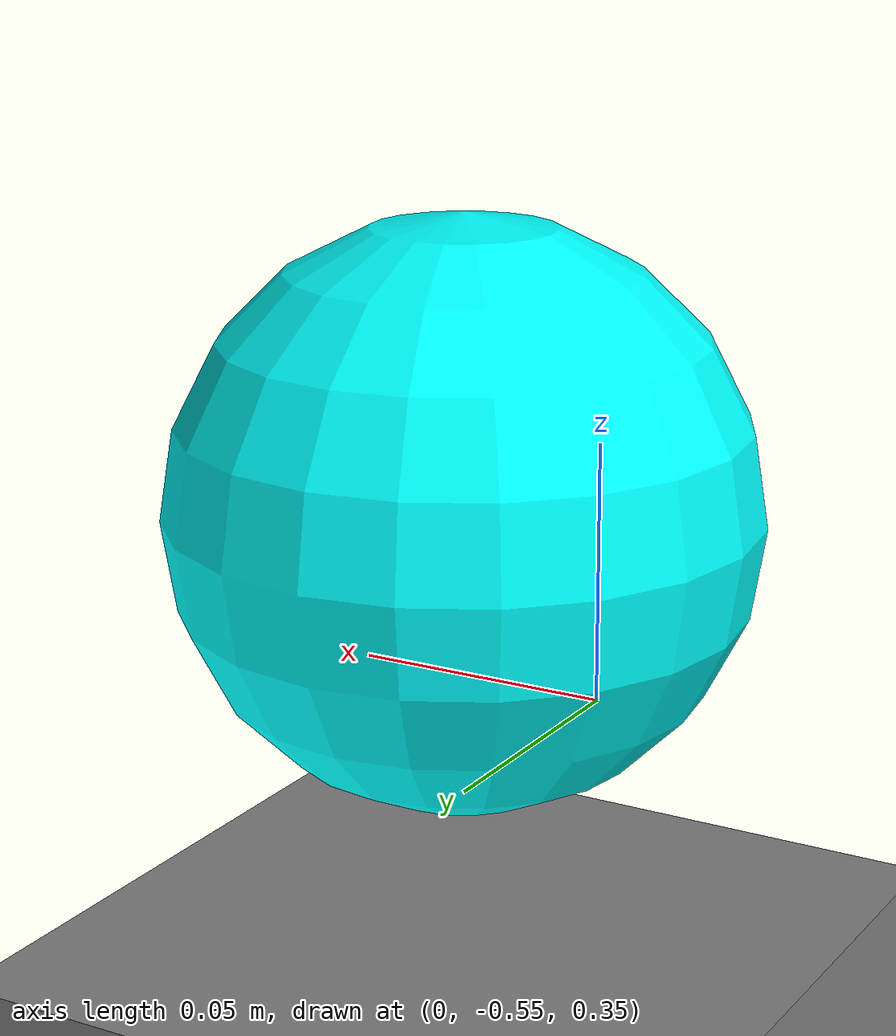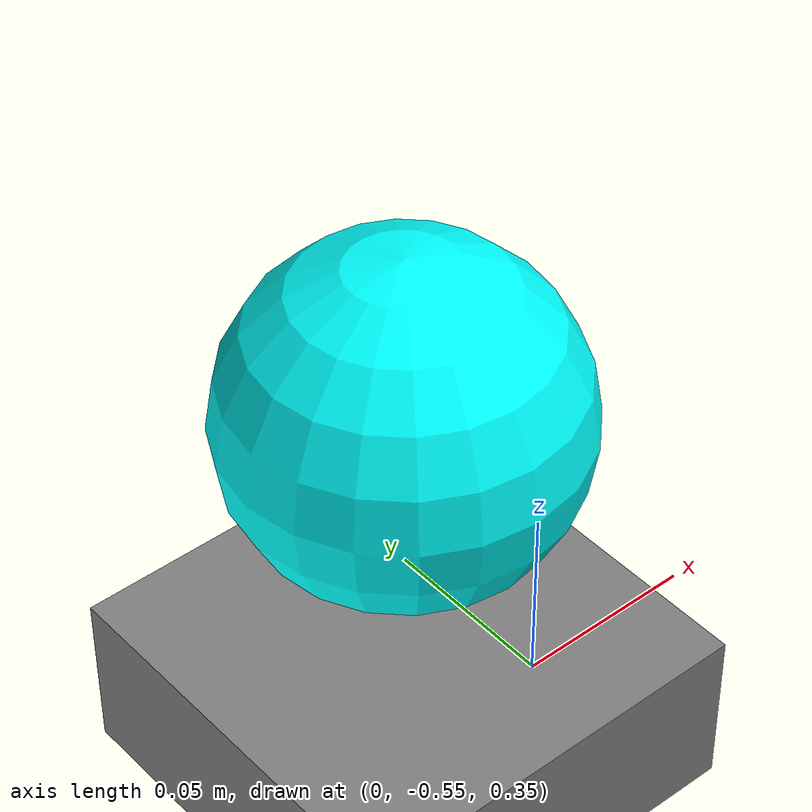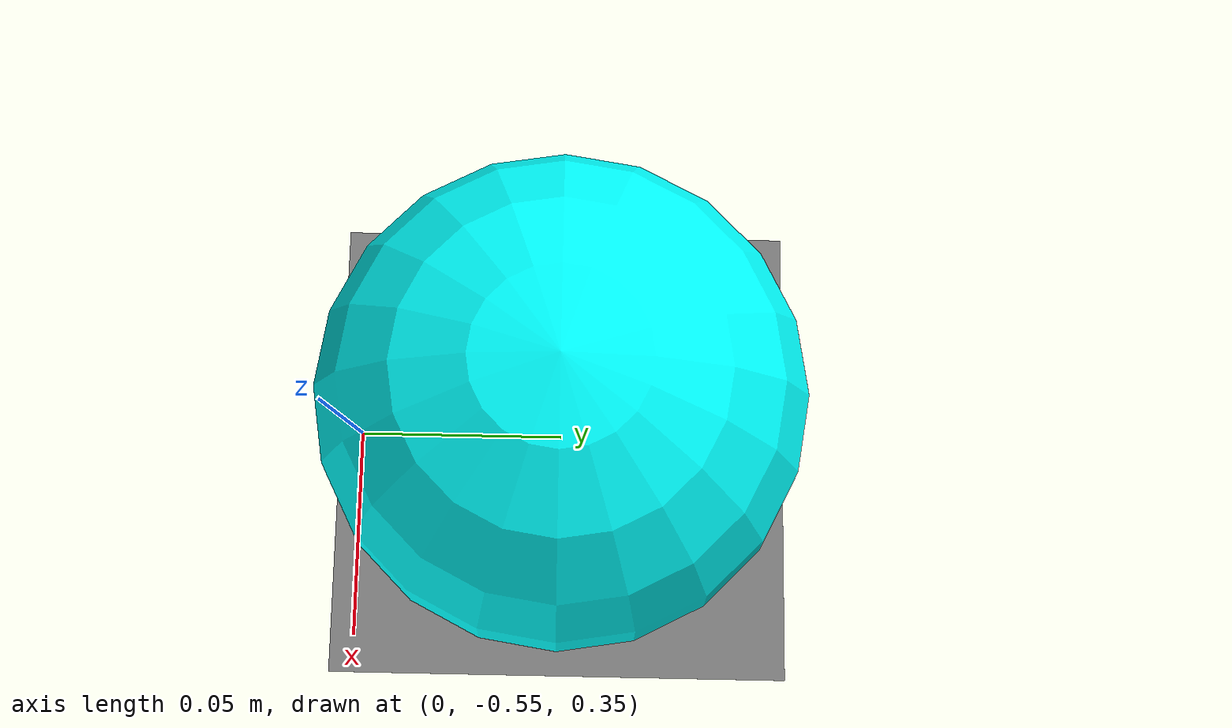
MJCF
<mujoco model="ry_convert">
  <compiler angle="radian" meshdir="unitree_g1/assets"/>

  <visual>
      <headlight ambient="0.4 0.4 0.4" diffuse="0.8 0.8 0.8" specular="0.1 0.1 0.1"/>
      <map znear="0.01"/>
      <global offwidth="1200" offheight="800"/>
  </visual>

  <default>
    <default class="slider_x">
        <position forcerange="-150 150" kp="1000" kv="10" ctrlrange="-0.5 0.5"/>
    </default>
    <default class="slider_y">
        <position forcerange="-150 150" kp="1000" kv="10" ctrlrange="0.0 1.0"/>
    </default>
    <default class="slider_z">
        <position forcerange="-150 150" kp="1000" kv="10" ctrlrange="-0.5 0.5"/>
    </default>
  </default>

  <actuator>
    <position name="l_joint1" joint="l_joint1" class="slider_x"/>
    <position name="l_joint2" joint="l_joint2" class="slider_y" />
    <position name="l_fing" joint="l_fing" class="slider_z" />
  </actuator>

  <worldbody>
    <camera name="fixed_cam" pos="0.003 -1.149 1.424" xyaxes="1.000 0.003 0.000 -0.002 0.702 0.712"/>

    <body name="l_base" pos="0.0 -0.5 0.4">
      <body name="l_joint1">
        <joint name="l_joint1" damping="0.1" type="slide" axis="1 0 0" />
        <inertial pos="0 0 0" mass="0.01" diaginertia="1e-5 1e-5 1e-5" />
        <body name="l_joint2">
          <joint name="l_joint2" damping="0.1" type="slide" axis="0 1 0" />
          <inertial pos="0 0 0" mass="0.01" diaginertia="1e-5 1e-5 1e-5" />
          <body name="l_fing">
            <joint name="l_fing" damping="0.1" type="slide" axis="0 0 1" />
            <geom type="sphere" size="0.05" rgba="0 1 1 1" mass="0.1"/>
            <camera name="wrist_cam" pos="0.000 -0.491 0.405" xyaxes="1.000 0.016 0.000 -0.005 0.278 0.961"/>
          </body>
        </body>
      </body>
    </body>
    <body name="floor" pos="0.0 0.0 0.3">
      <geom type="box" size="1.0 1.0 0.025" />
    </body>
  </worldbody>
</mujoco>
